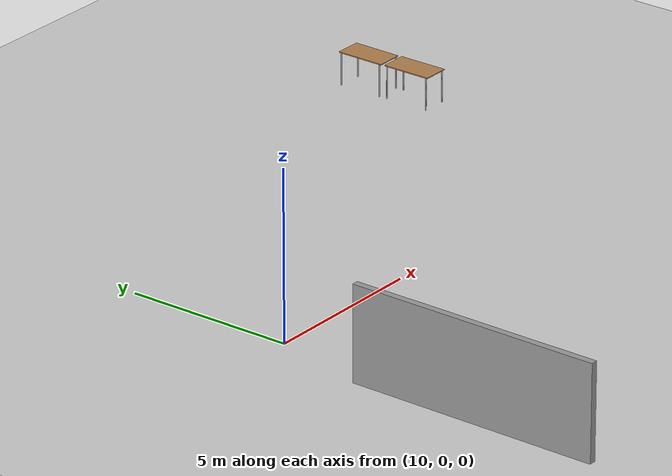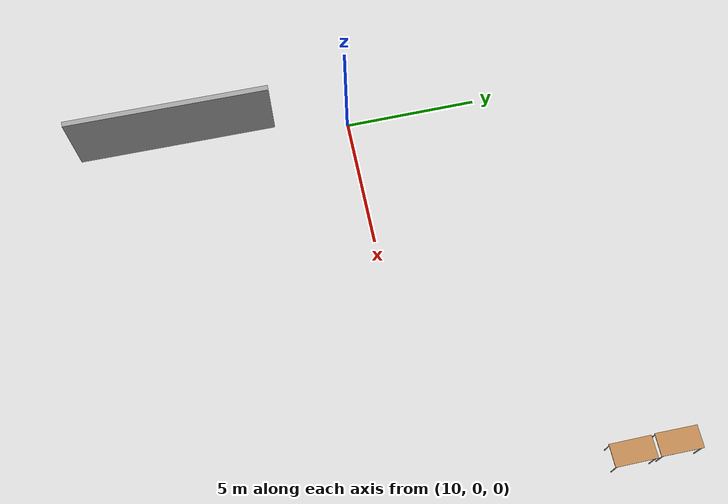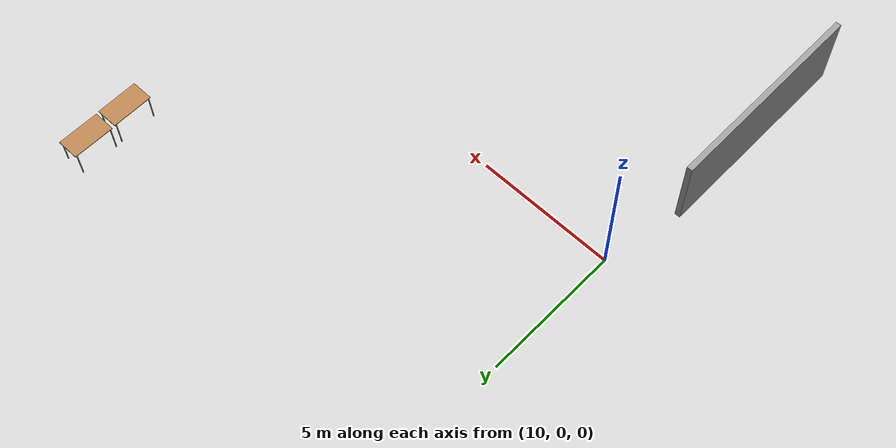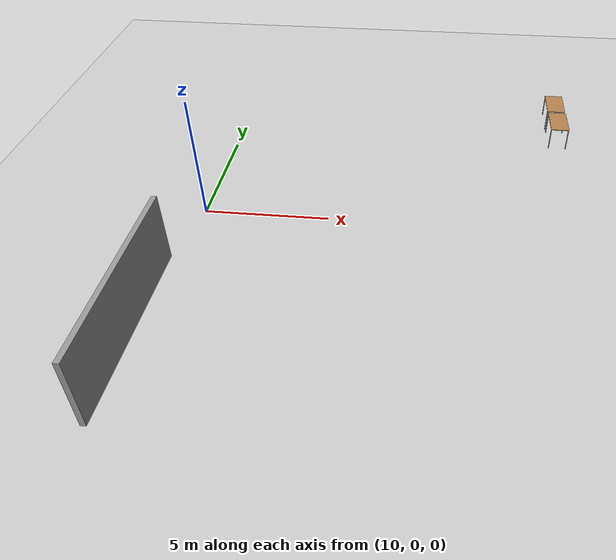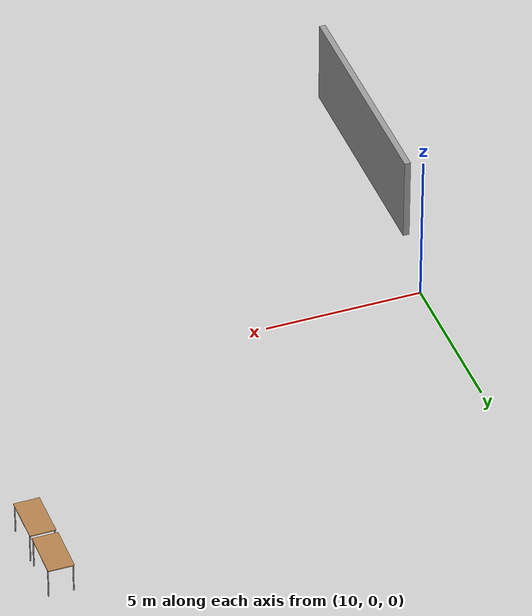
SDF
<sdf version="1.4">
 <world name="default">
  <light name="sun" type="directional">
   <pose>0 0 10 0 -0 0</pose>
   <diffuse>0.8 0.8 0.8 1</diffuse>
   <specular>0.2 0.2 0.2 1</specular>
   <attenuation>
    <range>1000</range>
    <constant>0.9</constant>
    <linear>0.01</linear>
    <quadratic>0.001</quadratic>
   </attenuation>
   <direction>-0.5 0.1 -0.9</direction>
  </light>
  <model name="ground_plane">
   <static>1</static>
   <link name="link">
    <collision name="collision">
     <geometry><plane><normal>0 0 1</normal><size>100 100</size></plane></geometry>
     <surface><friction><ode><mu>100</mu><mu2>50</mu2></ode></friction></surface>
    </collision>
    <visual name="visual">
     <cast_shadows>0</cast_shadows>
     <geometry><plane><normal>0 0 1</normal><size>100 100</size></plane></geometry>
     <material>
      <script><uri>file://media/materials/scripts/gazebo.material</uri><name>Gazebo/Grey</name></script>
     </material>
    </visual>
    <velocity_decay><linear>0</linear><angular>0</angular></velocity_decay>
   </link>
  </model>
  <physics type="ode">
   <max_step_size>0.001</max_step_size>
   <real_time_factor>1</real_time_factor>
   <real_time_update_rate>1000</real_time_update_rate>
   <gravity>0 0 -9.8</gravity>
  </physics>
  <scene><ambient>0.4 0.4 0.4 1</ambient><background>0.7 0.7 0.7 1</background><shadows>1</shadows></scene>
  <spherical_coordinates>
   <surface_model>EARTH_WGS84</surface_model>
   <latitude_deg>0</latitude_deg>
   <longitude_deg>0</longitude_deg>
   <elevation>0</elevation>
   <heading_deg>0</heading_deg>
  </spherical_coordinates>
  <model name="grey_wall">
   <static>1</static>
   <link name="link">
    <pose>0 0 1.4 0 -0 0</pose>
    <collision name="collision"><geometry><box><size>7.5 0.2 2.8</size></box></geometry></collision>
    <visual name="visual">
     <cast_shadows>0</cast_shadows>
     <geometry><box><size>7.5 0.2 2.8</size></box></geometry>
     <material>
      <script>
       <uri>model://grey_wall/materials/scripts</uri>
       <uri>model://grey_wall/materials/textures</uri>
       <name>vrc/grey_wall</name>
      </script>
     </material>
    </visual>
    <velocity_decay><linear>0</linear><angular>0</angular></velocity_decay>
   </link>
   <pose>9.36447 -6.53474 0 0 0 -1.57522</pose>
  </model>
  <model name="table">
   <static>1</static>
   <link name="link">
    <collision name="surface">
     <pose>0 0 1 0 -0 0</pose>
     <geometry><box><size>1.5 0.8 0.03</size></box></geometry>
     <surface><friction><ode><mu>0.6</mu><mu2>0.6</mu2></ode></friction></surface>
    </collision>
    <visual name="visual1">
     <pose>0 0 1 0 -0 0</pose>
     <geometry><box><size>1.5 0.8 0.03</size></box></geometry>
     <material>
      <script><uri>file://media/materials/scripts/gazebo.material</uri><name>Gazebo/Wood</name></script>
     </material>
    </visual>
    <collision name="front_left_leg">
     <pose>0.68 0.38 0.5 0 -0 0</pose>
     <geometry><cylinder><radius>0.02</radius><length>1</length></cylinder></geometry>
    </collision>
    <visual name="front_left_leg">
     <pose>0.68 0.38 0.5 0 -0 0</pose>
     <geometry><cylinder><radius>0.02</radius><length>1</length></cylinder></geometry>
     <material>
      <script><uri>file://media/materials/scripts/gazebo.material</uri><name>Gazebo/Grey</name></script>
     </material>
    </visual>
    <collision name="front_right_leg">
     <pose>0.68 -0.38 0.5 0 -0 0</pose>
     <geometry><cylinder><radius>0.02</radius><length>1</length></cylinder></geometry>
    </collision>
    <visual name="front_right_leg">
     <pose>0.68 -0.38 0.5 0 -0 0</pose>
     <geometry><cylinder><radius>0.02</radius><length>1</length></cylinder></geometry>
     <material>
      <script><uri>file://media/materials/scripts/gazebo.material</uri><name>Gazebo/Grey</name></script>
     </material>
    </visual>
    <collision name="back_right_leg">
     <pose>-0.68 -0.38 0.5 0 -0 0</pose>
     <geometry><cylinder><radius>0.02</radius><length>1</length></cylinder></geometry>
    </collision>
    <visual name="back_right_leg">
     <pose>-0.68 -0.38 0.5 0 -0 0</pose>
     <geometry><cylinder><radius>0.02</radius><length>1</length></cylinder></geometry>
     <material>
      <script><uri>file://media/materials/scripts/gazebo.material</uri><name>Gazebo/Grey</name></script>
     </material>
    </visual>
    <collision name="back_left_leg">
     <pose>-0.68 0.38 0.5 0 -0 0</pose>
     <geometry><cylinder><radius>0.02</radius><length>1</length></cylinder></geometry>
    </collision>
    <visual name="back_left_leg">
     <pose>-0.68 0.38 0.5 0 -0 0</pose>
     <geometry><cylinder><radius>0.02</radius><length>1</length></cylinder></geometry>
     <material>
      <script><uri>file://media/materials/scripts/gazebo.material</uri><name>Gazebo/Grey</name></script>
     </material>
    </visual>
    <velocity_decay><linear>0</linear><angular>0</angular></velocity_decay>
   </link>
   <pose>24.6223 6.79371 0 0 0 -1.56769</pose>
  </model>
  <model name="table_1">
   <static>1</static>
   <link name="link">
    <collision name="surface">
     <pose>0 0 1 0 -0 0</pose>
     <geometry><box><size>1.5 0.8 0.03</size></box></geometry>
     <surface><friction><ode><mu>0.6</mu><mu2>0.6</mu2></ode></friction></surface>
    </collision>
    <visual name="visual1">
     <pose>0 0 1 0 -0 0</pose>
     <geometry><box><size>1.5 0.8 0.03</size></box></geometry>
     <material>
      <script><uri>file://media/materials/scripts/gazebo.material</uri><name>Gazebo/Wood</name></script>
     </material>
    </visual>
    <collision name="front_left_leg">
     <pose>0.68 0.38 0.5 0 -0 0</pose>
     <geometry><cylinder><radius>0.02</radius><length>1</length></cylinder></geometry>
    </collision>
    <visual name="front_left_leg">
     <pose>0.68 0.38 0.5 0 -0 0</pose>
     <geometry><cylinder><radius>0.02</radius><length>1</length></cylinder></geometry>
     <material>
      <script><uri>file://media/materials/scripts/gazebo.material</uri><name>Gazebo/Grey</name></script>
     </material>
    </visual>
    <collision name="front_right_leg">
     <pose>0.68 -0.38 0.5 0 -0 0</pose>
     <geometry><cylinder><radius>0.02</radius><length>1</length></cylinder></geometry>
    </collision>
    <visual name="front_right_leg">
     <pose>0.68 -0.38 0.5 0 -0 0</pose>
     <geometry><cylinder><radius>0.02</radius><length>1</length></cylinder></geometry>
     <material>
      <script><uri>file://media/materials/scripts/gazebo.material</uri><name>Gazebo/Grey</name></script>
     </material>
    </visual>
    <collision name="back_right_leg">
     <pose>-0.68 -0.38 0.5 0 -0 0</pose>
     <geometry><cylinder><radius>0.02</radius><length>1</length></cylinder></geometry>
    </collision>
    <visual name="back_right_leg">
     <pose>-0.68 -0.38 0.5 0 -0 0</pose>
     <geometry><cylinder><radius>0.02</radius><length>1</length></cylinder></geometry>
     <material>
      <script><uri>file://media/materials/scripts/gazebo.material</uri><name>Gazebo/Grey</name></script>
     </material>
    </visual>
    <collision name="back_left_leg">
     <pose>-0.68 0.38 0.5 0 -0 0</pose>
     <geometry><cylinder><radius>0.02</radius><length>1</length></cylinder></geometry>
    </collision>
    <visual name="back_left_leg">
     <pose>-0.68 0.38 0.5 0 -0 0</pose>
     <geometry><cylinder><radius>0.02</radius><length>1</length></cylinder></geometry>
     <material>
      <script><uri>file://media/materials/scripts/gazebo.material</uri><name>Gazebo/Grey</name></script>
     </material>
    </visual>
    <velocity_decay><linear>0</linear><angular>0</angular></velocity_decay>
   </link>
   <pose>24.6027 8.40542 0 0 0 -1.57795</pose>
  </model>
 </world>
</sdf>
